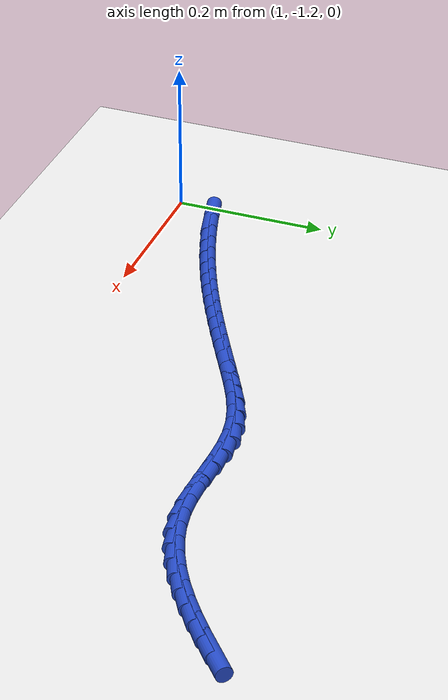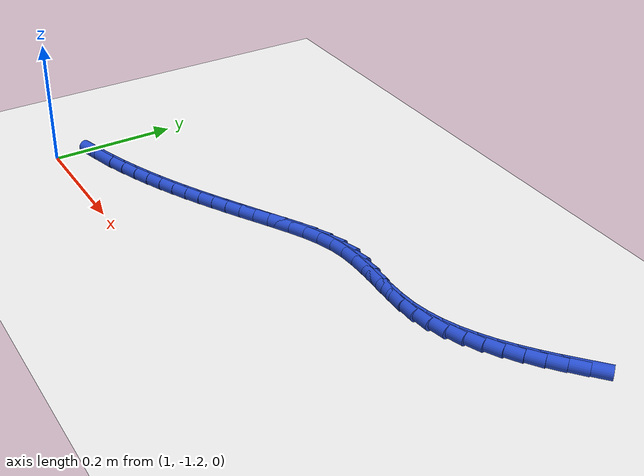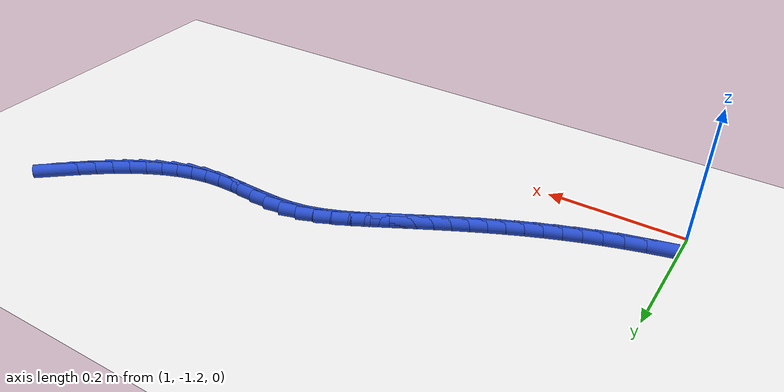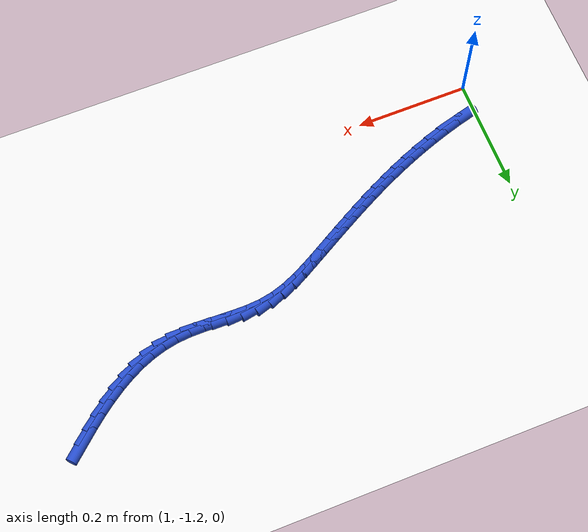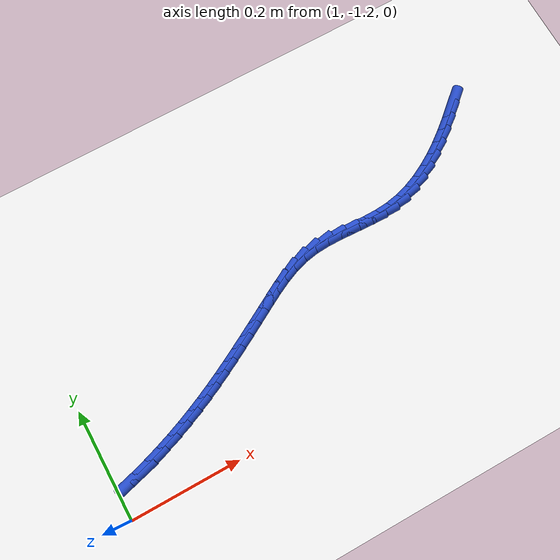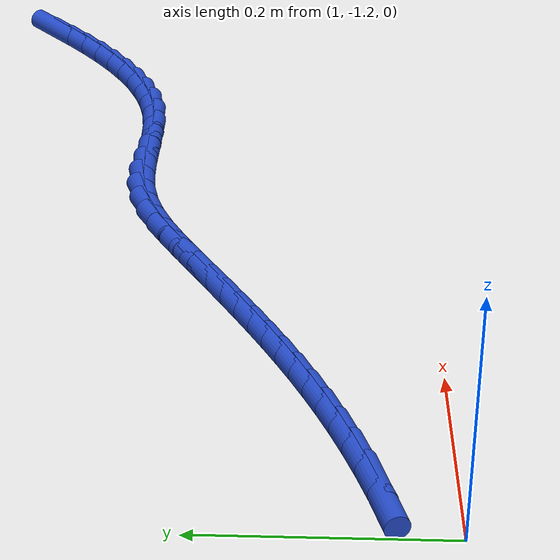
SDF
<sdf version="1.6">
 <world name="default">
  <model name="ground_plane">
   <static>1</static>
   <link name="link">
    <collision name="collision">
     <geometry><plane><normal>0 0 1</normal><size>100 100</size></plane></geometry>
     <surface><friction><ode><mu>100</mu><mu2>50</mu2></ode></friction></surface>
    </collision>
    <visual name="visual">
     <cast_shadows>0</cast_shadows>
     <geometry><plane><normal>0 0 1</normal><size>100 100</size></plane></geometry>
     <material>
      <script><uri>file://media/materials/scripts/gazebo.material</uri><name>Gazebo/WhiteGlow</name></script>
     </material>
    </visual>
   </link>
  </model>
  <model name="line">
   <link name="link_176">
    <pose>1.8344262606432786 -0.8353255750194817 0.01 0 1.57 0.7199779894895741</pose>
    <collision name="collision">
     <geometry><cylinder><radius>0.01</radius><length>0.08</length></cylinder></geometry>
    </collision>
    <visual name="visual">
     <material>
      <script><name>Gazebo/Blue</name><uri>file://media/materials/scripts/gazebo.material</uri></script>
     </material>
     <geometry><cylinder><radius>0.01</radius><length>0.08</length></cylinder></geometry>
    </visual>
   </link>
   <link name="link_177">
    <pose>1.814202987003778 -0.8530619716384659 0.01 0 1.57 0.688167351487104</pose>
    <collision name="collision">
     <geometry><cylinder><radius>0.01</radius><length>0.08</length></cylinder></geometry>
    </collision>
    <visual name="visual">
     <material>
      <script><name>Gazebo/Blue</name><uri>file://media/materials/scripts/gazebo.material</uri></script>
     </material>
     <geometry><cylinder><radius>0.01</radius><length>0.08</length></cylinder></geometry>
    </visual>
   </link>
   <link name="link_178">
    <pose>1.7936303698474523 -0.8699780065450899 0.01 0 1.57 0.6476713079222708</pose>
    <collision name="collision">
     <geometry><cylinder><radius>0.01</radius><length>0.08</length></cylinder></geometry>
    </collision>
    <visual name="visual">
     <material>
      <script><name>Gazebo/Blue</name><uri>file://media/materials/scripts/gazebo.material</uri></script>
     </material>
     <geometry><cylinder><radius>0.01</radius><length>0.08</length></cylinder></geometry>
    </visual>
   </link>
   <link name="link_179">
    <pose>1.7726656872725313 -0.885838552397535 0.01 0 1.57 0.5977608696990735</pose>
    <collision name="collision">
     <geometry><cylinder><radius>0.01</radius><length>0.08</length></cylinder></geometry>
    </collision>
    <visual name="visual">
     <material>
      <script><name>Gazebo/Blue</name><uri>file://media/materials/scripts/gazebo.material</uri></script>
     </material>
     <geometry><cylinder><radius>0.01</radius><length>0.08</length></cylinder></geometry>
    </visual>
   </link>
   <link name="link_180">
    <pose>1.7512662173772444 -0.9004084818539815 0.01 0 1.57 0.537658829992814</pose>
    <collision name="collision">
     <geometry><cylinder><radius>0.01</radius><length>0.08</length></cylinder></geometry>
    </collision>
    <visual name="visual">
     <material>
      <script><name>Gazebo/Blue</name><uri>file://media/materials/scripts/gazebo.material</uri></script>
     </material>
     <geometry><cylinder><radius>0.01</radius><length>0.08</length></cylinder></geometry>
    </visual>
   </link>
   <link name="link_181">
    <pose>1.7293892382598217 -0.9134526675726115 0.01 0 1.57 0.4666687460143926</pose>
    <collision name="collision">
     <geometry><cylinder><radius>0.01</radius><length>0.08</length></cylinder></geometry>
    </collision>
    <visual name="visual">
     <material>
      <script><name>Gazebo/Blue</name><uri>file://media/materials/scripts/gazebo.material</uri></script>
     </material>
     <geometry><cylinder><radius>0.01</radius><length>0.08</length></cylinder></geometry>
    </visual>
   </link>
   <link name="link_182">
    <pose>1.7069920280184938 -0.9247359822116048 0.01 0 1.57 0.3843770443172844</pose>
    <collision name="collision">
     <geometry><cylinder><radius>0.01</radius><length>0.08</length></cylinder></geometry>
    </collision>
    <visual name="visual">
     <material>
      <script><name>Gazebo/Blue</name><uri>file://media/materials/scripts/gazebo.material</uri></script>
     </material>
     <geometry><cylinder><radius>0.01</radius><length>0.08</length></cylinder></geometry>
    </visual>
   </link>
   <link name="link_183">
    <pose>1.6840318647514907 -0.934023298429143 0.01 0 1.57 0.290928773464676</pose>
    <collision name="collision">
     <geometry><cylinder><radius>0.01</radius><length>0.08</length></cylinder></geometry>
    </collision>
    <visual name="visual">
     <material>
      <script><name>Gazebo/Blue</name><uri>file://media/materials/scripts/gazebo.material</uri></script>
     </material>
     <geometry><cylinder><radius>0.01</radius><length>0.08</length></cylinder></geometry>
    </visual>
   </link>
   <link name="link_184">
    <pose>1.6604660265570423 -0.9410794888834072 0.01 0 1.57 0.1873327363574225</pose>
    <collision name="collision">
     <geometry><cylinder><radius>0.01</radius><length>0.08</length></cylinder></geometry>
    </collision>
    <visual name="visual">
     <material>
      <script><name>Gazebo/Blue</name><uri>file://media/materials/scripts/gazebo.material</uri></script>
     </material>
     <geometry><cylinder><radius>0.01</radius><length>0.08</length></cylinder></geometry>
    </visual>
   </link>
   <link name="link_185">
    <pose>1.6362517915333776 -0.9456694262325782 0.01 0 1.57 0.07944772342039666</pose>
    <collision name="collision">
     <geometry><cylinder><radius>0.01</radius><length>0.08</length></cylinder></geometry>
    </collision>
    <visual name="visual">
     <material>
      <script><name>Gazebo/Blue</name><uri>file://media/materials/scripts/gazebo.material</uri></script>
     </material>
     <geometry><cylinder><radius>0.01</radius><length>0.08</length></cylinder></geometry>
    </visual>
   </link>
   <link name="link_186">
    <pose>1.6113664529972251 -0.9476506799997736 0.01 0 1.57 -0.0009004914442511456</pose>
    <collision name="collision">
     <geometry><cylinder><radius>0.01</radius><length>0.08</length></cylinder></geometry>
    </collision>
    <visual name="visual">
     <material>
      <script><name>Gazebo/Blue</name><uri>file://media/materials/scripts/gazebo.material</uri></script>
     </material>
     <geometry><cylinder><radius>0.01</radius><length>0.08</length></cylinder></geometry>
    </visual>
   </link>
   <link name="link_187">
    <pose>1.5859485912966143 -0.9476277914265944 0.01 0 1.57 -0.041239120869049524</pose>
    <collision name="collision">
     <geometry><cylinder><radius>0.01</radius><length>0.08</length></cylinder></geometry>
    </collision>
    <visual name="visual">
     <material>
      <script><name>Gazebo/Blue</name><uri>file://media/materials/scripts/gazebo.material</uri></script>
     </material>
     <geometry><cylinder><radius>0.01</radius><length>0.08</length></cylinder></geometry>
    </visual>
   </link>
   <link name="link_188">
    <pose>1.5602146572144338 -0.9465659445916702 0.01 0 1.57 -0.04384151723912247</pose>
    <collision name="collision">
     <geometry><cylinder><radius>0.01</radius><length>0.08</length></cylinder></geometry>
    </collision>
    <visual name="visual">
     <material>
      <script><name>Gazebo/Blue</name><uri>file://media/materials/scripts/gazebo.material</uri></script>
     </material>
     <geometry><cylinder><radius>0.01</radius><length>0.08</length></cylinder></geometry>
    </visual>
   </link>
   <link name="link_189">
    <pose>1.5343816056362476 -0.945432658234011 0.01 0 1.57 -0.009224127477804031</pose>
    <collision name="collision">
     <geometry><cylinder><radius>0.01</radius><length>0.08</length></cylinder></geometry>
    </collision>
    <visual name="visual">
     <material>
      <script><name>Gazebo/Blue</name><uri>file://media/materials/scripts/gazebo.material</uri></script>
     </material>
     <geometry><cylinder><radius>0.01</radius><length>0.08</length></cylinder></geometry>
    </visual>
   </link>
   <link name="link_190">
    <pose>1.5086663914476186 -0.9451954510926254 0.01 0 1.57 0.06399303097005546</pose>
    <collision name="collision">
     <geometry><cylinder><radius>0.01</radius><length>0.08</length></cylinder></geometry>
    </collision>
    <visual name="visual">
     <material>
      <script><name>Gazebo/Blue</name><uri>file://media/materials/scripts/gazebo.material</uri></script>
     </material>
     <geometry><cylinder><radius>0.01</radius><length>0.08</length></cylinder></geometry>
    </visual>
   </link>
   <link name="link_191">
    <pose>1.4832859695341116 -0.9468218419065223 0.01 0 1.57 0.1771860349854464</pose>
    <collision name="collision">
     <geometry><cylinder><radius>0.01</radius><length>0.08</length></cylinder></geometry>
    </collision>
    <visual name="visual">
     <material>
      <script><name>Gazebo/Blue</name><uri>file://media/materials/scripts/gazebo.material</uri></script>
     </material>
     <geometry><cylinder><radius>0.01</radius><length>0.08</length></cylinder></geometry>
    </visual>
   </link>
   <link name="link_192">
    <pose>1.4584554803122343 -0.9512680852925581 0.01 0 1.57 0.3032788574697704</pose>
    <collision name="collision">
     <geometry><cylinder><radius>0.01</radius><length>0.08</length></cylinder></geometry>
    </collision>
    <visual name="visual">
     <material>
      <script><name>Gazebo/Blue</name><uri>file://media/materials/scripts/gazebo.material</uri></script>
     </material>
     <geometry><cylinder><radius>0.01</radius><length>0.08</length></cylinder></geometry>
    </visual>
   </link>
   <link name="link_193">
    <pose>1.434284020275879 -0.9588321211422565 0.01 0 1.57 0.4002069467462779</pose>
    <collision name="collision">
     <geometry><cylinder><radius>0.01</radius><length>0.08</length></cylinder></geometry>
    </collision>
    <visual name="visual">
     <material>
      <script><name>Gazebo/Blue</name><uri>file://media/materials/scripts/gazebo.material</uri></script>
     </material>
     <geometry><cylinder><radius>0.01</radius><length>0.08</length></cylinder></geometry>
    </visual>
   </link>
   <link name="link_194">
    <pose>1.4107179215206653 -0.9688014570894541 0.01 0 1.57 0.4658084440259908</pose>
    <collision name="collision">
     <geometry><cylinder><radius>0.01</radius><length>0.08</length></cylinder></geometry>
    </collision>
    <visual name="visual">
     <material>
      <script><name>Gazebo/Blue</name><uri>file://media/materials/scripts/gazebo.material</uri></script>
     </material>
     <geometry><cylinder><radius>0.01</radius><length>0.08</length></cylinder></geometry>
    </visual>
   </link>
   <link name="link_195">
    <pose>1.3876897006742115 -0.9803778351173209 0.01 0 1.57 0.502106315407262</pose>
    <collision name="collision">
     <geometry><cylinder><radius>0.01</radius><length>0.08</length></cylinder></geometry>
    </collision>
    <visual name="visual">
     <material>
      <script><name>Gazebo/Blue</name><uri>file://media/materials/scripts/gazebo.material</uri></script>
     </material>
     <geometry><cylinder><radius>0.01</radius><length>0.08</length></cylinder></geometry>
    </visual>
   </link>
   <link name="link_196">
    <pose>1.365131874364135 -0.9927629972090263 0.01 0 1.57 0.5120647948463636</pose>
    <collision name="collision">
     <geometry><cylinder><radius>0.01</radius><length>0.08</length></cylinder></geometry>
    </collision>
    <visual name="visual">
     <material>
      <script><name>Gazebo/Blue</name><uri>file://media/materials/scripts/gazebo.material</uri></script>
     </material>
     <geometry><cylinder><radius>0.01</radius><length>0.08</length></cylinder></geometry>
    </visual>
   </link>
   <link name="link_197">
    <pose>1.342973103996798 -1.0052178367961928 0.01 0 1.57 0.511307466467446</pose>
    <collision name="collision">
     <geometry><cylinder><radius>0.01</radius><length>0.08</length></cylinder></geometry>
    </collision>
    <visual name="visual">
     <material>
      <script><name>Gazebo/Blue</name><uri>file://media/materials/scripts/gazebo.material</uri></script>
     </material>
     <geometry><cylinder><radius>0.01</radius><length>0.08</length></cylinder></geometry>
    </visual>
   </link>
   <link name="link_198">
    <pose>1.3211106968466948 -1.0174843201700827 0.01 0 1.57 0.5073632680429618</pose>
    <collision name="collision">
     <geometry><cylinder><radius>0.01</radius><length>0.08</length></cylinder></geometry>
    </collision>
    <visual name="visual">
     <material>
      <script><name>Gazebo/Blue</name><uri>file://media/materials/scripts/gazebo.material</uri></script>
     </material>
     <geometry><cylinder><radius>0.01</radius><length>0.08</length></cylinder></geometry>
    </visual>
   </link>
   <link name="link_199">
    <pose>1.2994267036878797 -1.029538497229413 0.01 0 1.57 0.5002293600746329</pose>
    <collision name="collision">
     <geometry><cylinder><radius>0.01</radius><length>0.08</length></cylinder></geometry>
    </collision>
    <visual name="visual">
     <material>
      <script><name>Gazebo/Blue</name><uri>file://media/materials/scripts/gazebo.material</uri></script>
     </material>
     <geometry><cylinder><radius>0.01</radius><length>0.08</length></cylinder></geometry>
    </visual>
   </link>
   <link name="link_200">
    <pose>1.2778030734260777 -1.0413579808595212 0.01 0 1.57 0.4899226106217395</pose>
    <collision name="collision">
     <geometry><cylinder><radius>0.01</radius><length>0.08</length></cylinder></geometry>
    </collision>
    <visual name="visual">
     <material>
      <script><name>Gazebo/Blue</name><uri>file://media/materials/scripts/gazebo.material</uri></script>
     </material>
     <geometry><cylinder><radius>0.01</radius><length>0.08</length></cylinder></geometry>
    </visual>
   </link>
   <link name="link_201">
    <pose>1.2561217549670127 -1.0529203839457466 0.01 0 1.57 0.47653509752466594</pose>
    <collision name="collision">
     <geometry><cylinder><radius>0.01</radius><length>0.08</length></cylinder></geometry>
    </collision>
    <visual name="visual">
     <material>
      <script><name>Gazebo/Blue</name><uri>file://media/materials/scripts/gazebo.material</uri></script>
     </material>
     <geometry><cylinder><radius>0.01</radius><length>0.08</length></cylinder></geometry>
    </visual>
   </link>
   <link name="link_202">
    <pose>1.2342646972164093 -1.064203319373428 0.01 0 1.57 0.4602345008817176</pose>
    <collision name="collision">
     <geometry><cylinder><radius>0.01</radius><length>0.08</length></cylinder></geometry>
    </collision>
    <visual name="visual">
     <material>
      <script><name>Gazebo/Blue</name><uri>file://media/materials/scripts/gazebo.material</uri></script>
     </material>
     <geometry><cylinder><radius>0.01</radius><length>0.08</length></cylinder></geometry>
    </visual>
   </link>
   <link name="link_203">
    <pose>1.2121138490799912 -1.0751844000279034 0.01 0 1.57 0.44126048529424067</pose>
    <collision name="collision">
     <geometry><cylinder><radius>0.01</radius><length>0.08</length></cylinder></geometry>
    </collision>
    <visual name="visual">
     <material>
      <script><name>Gazebo/Blue</name><uri>file://media/materials/scripts/gazebo.material</uri></script>
     </material>
     <geometry><cylinder><radius>0.01</radius><length>0.08</length></cylinder></geometry>
    </visual>
   </link>
   <link name="link_204">
    <pose>1.1895511594634827 -1.0858412387945116 0.01 0 1.57 0.4199168329211074</pose>
    <collision name="collision">
     <geometry><cylinder><radius>0.01</radius><length>0.08</length></cylinder></geometry>
    </collision>
    <visual name="visual">
     <material>
      <script><name>Gazebo/Blue</name><uri>file://media/materials/scripts/gazebo.material</uri></script>
     </material>
     <geometry><cylinder><radius>0.01</radius><length>0.08</length></cylinder></geometry>
    </visual>
   </link>
   <link name="link_205">
    <pose>1.166458577272609 -1.096151448558592 0.01 0 1.57 0.39655952227879415</pose>
    <collision name="collision">
     <geometry><cylinder><radius>0.01</radius><length>0.08</length></cylinder></geometry>
    </collision>
    <visual name="visual">
     <material>
      <script><name>Gazebo/Blue</name><uri>file://media/materials/scripts/gazebo.material</uri></script>
     </material>
     <geometry><cylinder><radius>0.01</radius><length>0.08</length></cylinder></geometry>
    </visual>
   </link>
   <link name="link_206">
    <pose>1.1427180514130932 -1.106092642205482 0.01 0 1.57 0.3715814592653719</pose>
    <collision name="collision">
     <geometry><cylinder><radius>0.01</radius><length>0.08</length></cylinder></geometry>
    </collision>
    <visual name="visual">
     <material>
      <script><name>Gazebo/Blue</name><uri>file://media/materials/scripts/gazebo.material</uri></script>
     </material>
     <geometry><cylinder><radius>0.01</radius><length>0.08</length></cylinder></geometry>
    </visual>
   </link>
   <link name="link_207">
    <pose>1.11821153079066 -1.1156424326205208 0.01 0 1.57 0.3453950526839124</pose>
    <collision name="collision">
     <geometry><cylinder><radius>0.01</radius><length>0.08</length></cylinder></geometry>
    </collision>
    <visual name="visual">
     <material>
      <script><name>Gazebo/Blue</name><uri>file://media/materials/scripts/gazebo.material</uri></script>
     </material>
     <geometry><cylinder><radius>0.01</radius><length>0.08</length></cylinder></geometry>
    </visual>
   </link>
   <link name="link_208">
    <pose>1.092820964311033 -1.1247784326890473 0.01 0 1.57 0.318414165933397</pose>
    <collision name="collision">
     <geometry><cylinder><radius>0.01</radius><length>0.08</length></cylinder></geometry>
    </collision>
    <visual name="visual">
     <material>
      <script><name>Gazebo/Blue</name><uri>file://media/materials/scripts/gazebo.material</uri></script>
     </material>
     <geometry><cylinder><radius>0.01</radius><length>0.08</length></cylinder></geometry>
    </visual>
   </link>
   <link name="link_209">
    <pose>1.066428300879938 -1.1334782552963993 0.01 0 1.57 0.2906023650244153</pose>
    <collision name="collision">
     <geometry><cylinder><radius>0.01</radius><length>0.08</length></cylinder></geometry>
    </collision>
    <visual name="visual">
     <material>
      <script><name>Gazebo/Blue</name><uri>file://media/materials/scripts/gazebo.material</uri></script>
     </material>
     <geometry><cylinder><radius>0.01</radius><length>0.08</length></cylinder></geometry>
    </visual>
   </link>
   <link name="link_210">
    <pose>1.0389436395271467 -1.1416980630180855 0.01 0 1.57 0.2564144484956271</pose>
    <collision name="collision">
     <geometry><cylinder><radius>0.01</radius><length>0.08</length></cylinder></geometry>
    </collision>
    <visual name="visual">
     <material>
      <script><name>Gazebo/Blue</name><uri>file://media/materials/scripts/gazebo.material</uri></script>
     </material>
     <geometry><cylinder><radius>0.01</radius><length>0.08</length></cylinder></geometry>
    </visual>
   </link>
  </model>
 </world>
</sdf>
